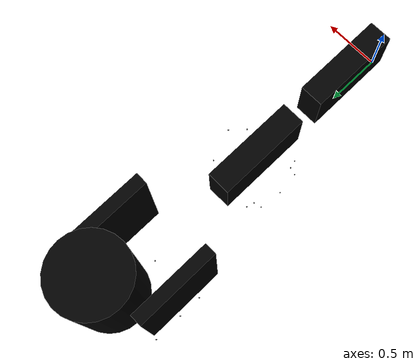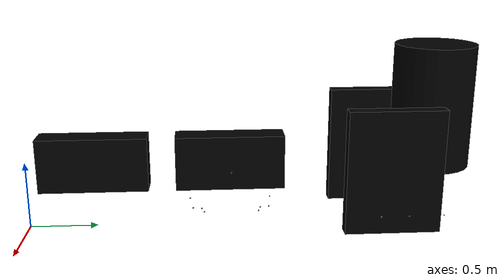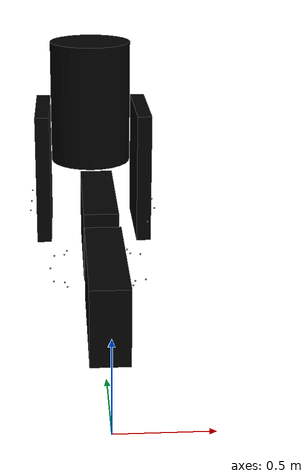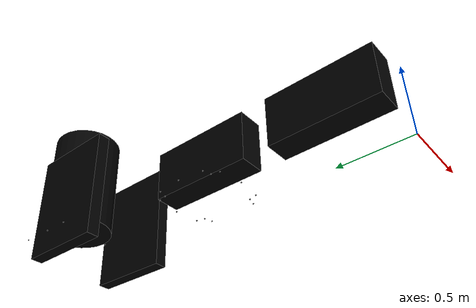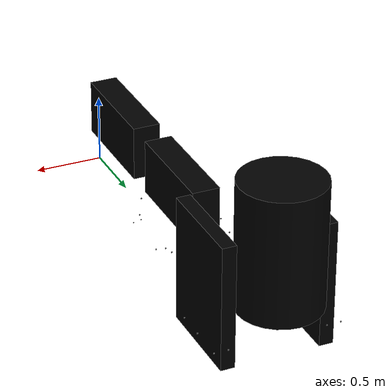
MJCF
<mujoco model="pr2_model">
    <worldbody name="base">
        <body name="pr2" pos="0 0 0.5">
            <body name="link1" pos="0 0.5 0.">
                <joint axis="0 0 1" name="joint1" type="hinge" pos="0 -0.5 0" limited="false"/>
                <geom name="armgeom1" type="box" size="0.1 0.4 0.2" mass="1" rgba="0 0 0 1" conaffinity="0"/>
                <body name="link2" pos="0 1. 0.">
                    <joint axis="0 0 1" name="joint2" type="hinge" pos="0 -0.5 0" limited="false" />
                    <geom name="armgeom2" type="box" size="0.1 0.4 0.2" mass="1" rgba="0 0 0 1" conaffinity="0"/>
                    <site name="body_1" pos="0.3 0 0" zaxis="1 0 0" />
                    <site name="body_2" pos="0.276 0.195 -0.3" zaxis="0.924 0.0585 0" />
                    <site name="body_3" pos="0.212 0.212 -0.3" zaxis="0.707 0.707 0" />
                    <site name="body_4" pos="0.195 0.276 -0.3" zaxis="0.0585 0.924 0" />

                    <site name="body_5" pos="0 0.3 -0.3" zaxis="0 1 0"/>
                    <site name="body_6" pos="-0.195 0.276 -0.30" zaxis="-0.0585 0.924 0"/>
                    <site name="body_7" pos="-0.212 0.212 -0.30" zaxis="-0.707 0.707 0"/>
                    <site name="body_8" pos="-0.276 0.195 -0.30" zaxis="-0.924 0.0585 0"/>

                    <site name="body_9" pos="-0.3 0 -0.3" zaxis="-1 0 0"/>
                    <site name="body_10" pos="-0.276 -0.195 -0.30" zaxis="-0.924 -0.0585 0"/>
                    <site name="body_11" pos="-0.212 -0.212 -0.30" zaxis="-0.707 -0.707 0"/>
                    <site name="body_12" pos="-0.195 -0.276 -0.30" zaxis="-0.0585 -0.924 0"/>

                    <site name="body_13" pos="0 -0.3 -0.3" zaxis="0 -1 0"/>
                    <site name="body_14" pos="0.195 -0.276 -0.3" zaxis="0.0585 -0.924 0"/>
                    <site name="body_15" pos="0.212 -0.212 -0.3" zaxis="0.707 -0.707 0"/>
                    <site name="body_16" pos="0.276 -0.195 -0.3" zaxis="0.924 -0.0585 0"/>

                    <site name="body_17" pos="0 1.1 -0.3" zaxis="0 1 0"/>

                    <body name="ee" pos="0 0.5 0.">
                        <geom name="ee_geom" type="cylinder" size="0.295 0.45" mass="1" rgba="0 0 0 1" conaffinity="0" pos="0 1. 0.4"/>
                        <joint axis="0 0 1" name="wrist" type="hinge" pos="0 0 0" limited="false"/>
                        <body name="right_finger" pos="-0.35 0.65 0" euler="0 0 -0.05">
                            <site name="rf_1" pos="0. 0.35 -0.3" zaxis="0 1 0"/>
                            <site name="rf_2" pos="-0.1 0.35 -0.3" zaxis="-1 1 0"/>
                            <site name="rf_3" pos="-0.1 0.1 -0.3" zaxis="-1 0 0"/>
                            <site name="rf_4" pos="-0.1 -0.1 -0.3" zaxis="-1 0 0"/>
                            <joint name="right_finger_joint" axis="1 0 0" limited="true" range="-0.1 0.1" type="slide" solreflimit="0.02 0.25" solimplimit="0.99 1. 0.0001" pos="0 0 0" margin="0.02" />
                            <geom pos="0 0 0" size="0.05 0.345 0.45" type="box" mass="0.5" friction="1.9 0.95 0.0005" rgba="0 0 0 1" conaffinity="0"/>
                        </body>
                        <body name="left_finger" pos="0.35 0.65 0" euler="0 0 0.05">
                            <site name="lf_1" pos="0. 0.35 -0.3" zaxis="0 1 0"/>
                            <site name="lf_2" pos="0.1 0.35 -0.3" zaxis="1 1 0"/>
                            <site name="lf_3" pos="0.1 0.1 -0.3" zaxis="1 0 0"/>
                            <site name="lf_4" pos="0.1 -0.1 -0.3" zaxis="1 0 0"/>
                            <joint name="left_finger_joint" axis="-1 0 0" limited="true" range="-0.1 0.1" type="slide" solreflimit="0.02 0.25" solimplimit="0.99 1. 0.0001" pos="0 0 0" margin="0.02" />
                            <geom pos="0 0 0" size="0.05 0.345 0.45" type="box" mass="0.5" friction="1.9 0.95 0.0005" rgba="0 0 0 1" conaffinity="0"/>
                        </body>
                    </body>
                </body>
            </body>
        </body>
    </worldbody>

    <actuator>
        <velocity gear="3" kv="25" joint="joint1" name="joint1" ctrllimited="true" ctrlrange="-20 20" />
        <velocity gear="2" kv="25" joint="joint2" name="joint2" ctrllimited="true" ctrlrange="-20 20" />
        <velocity kv="30" joint="wrist" name="wrist" ctrllimited="true" ctrlrange="-20 20" />
        <motor gear="30" joint="left_finger_joint" name="left_grip" ctrllimited="true" ctrlrange="-50 200" />
        <motor gear="30" joint="right_finger_joint" name="right_grip" ctrllimited="true" ctrlrange="-50 200" />
    </actuator>

    <sensor>
        <rangefinder name="lidar_1" site="body_1" cutoff="2.5" />
        <rangefinder name="lidar_2" site="body_2" cutoff="2.5" />
        <rangefinder name="lidar_5" site="body_5" cutoff="2.5" />
        <rangefinder name="lidar_8" site="body_8" cutoff="2.5" />
        <rangefinder name="lidar_9" site="body_9" cutoff="2.5" />
        <rangefinder name="lidar_10" site="body_10" cutoff="2.5" />
        <rangefinder name="lidar_11" site="body_11" cutoff="2.5" />
        <rangefinder name="lidar_12" site="body_12" cutoff="2.5" />
        <rangefinder name="lidar_13" site="body_13" cutoff="2.5" />
        <rangefinder name="lidar_14" site="body_14" cutoff="2.5" />
        <rangefinder name="lidar_15" site="body_15" cutoff="2.5" />
        <rangefinder name="lidar_16" site="body_16" cutoff="2.5" />
        <rangefinder name="llidar_1" site="lf_1" cutoff="2.5" />
        <rangefinder name="llidar_2" site="lf_2" cutoff="2.5" />
        <rangefinder name="llidar_3" site="lf_3" cutoff="2.5" />
        <rangefinder name="llidar_4" site="lf_4" cutoff="2.5" />
        <rangefinder name="rlidar_1" site="rf_1" cutoff="2.5" />
        <rangefinder name="rlidar_2" site="rf_2" cutoff="2.5" />
        <rangefinder name="rlidar_3" site="rf_3" cutoff="2.5" />
        <rangefinder name="rlidar_4" site="rf_4" cutoff="2.5" />
        <rangefinder name="far_forward" site="body_17" cutoff="2.5" />
    </sensor>
</mujoco>
